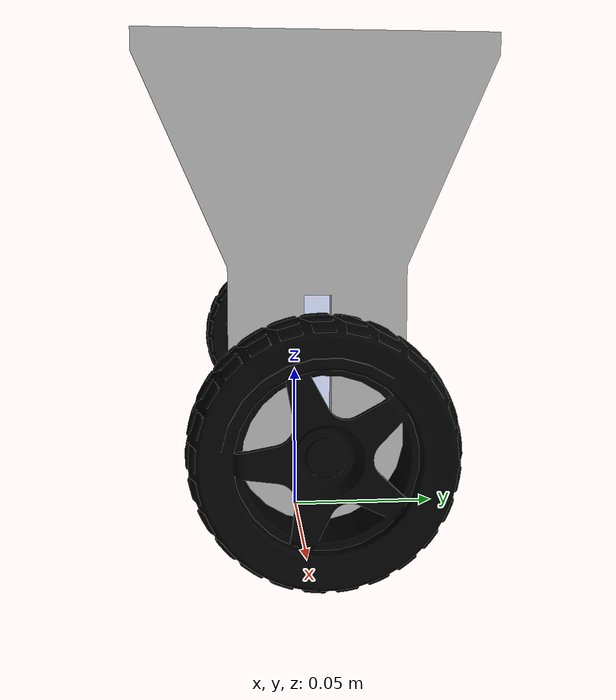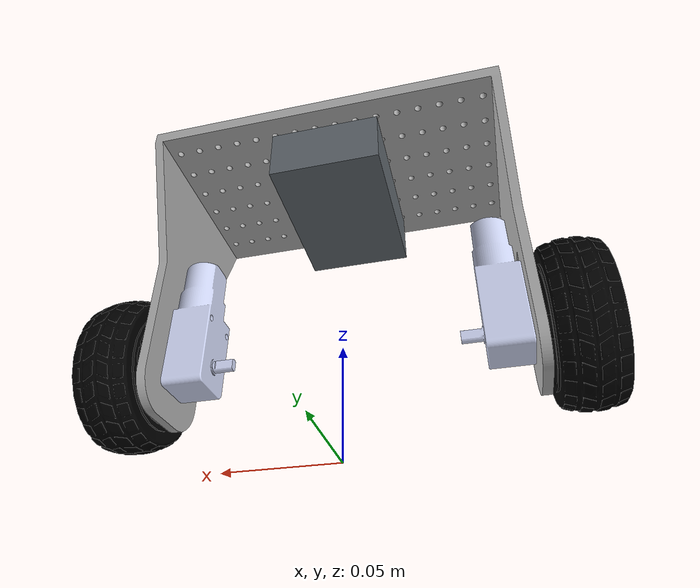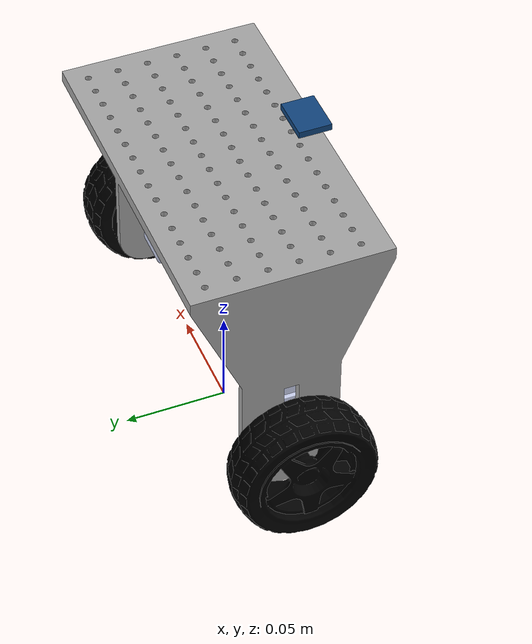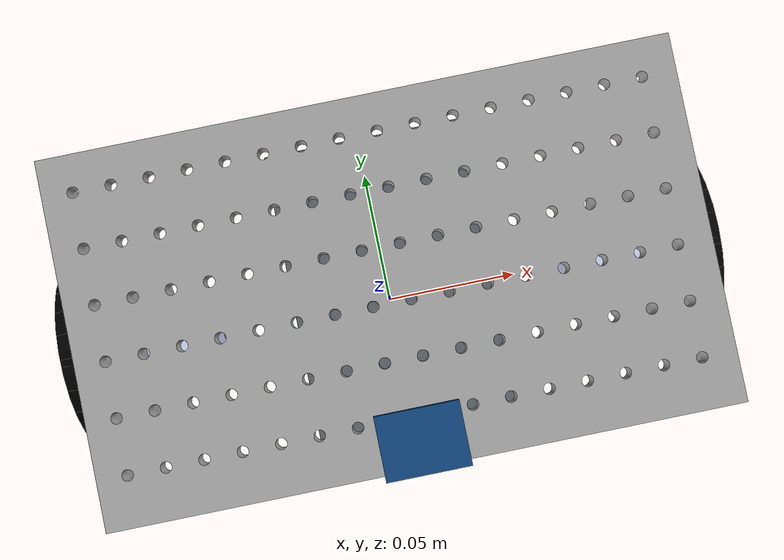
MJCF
<?xml version="1.0" ?>
<!-- Generated using onshape-to-robot -->
<!-- Onshape https://cad.onshape.com/documents/740d5402aae08c0fa4f6d6f2/w/2e2c6d5b3e262629ae121e1f/e/18d36e26c3fc768475e27b5f -->
<mujoco model="cad">
  <compiler angle="radian" meshdir="assets" autolimits="true"/>
  <default>
    <default class="cad">
      <joint frictionloss="0.1" armature="0.00082"/>
      <position kp="50" dampratio="1"/>
      <default class="visual">
        <geom type="mesh" contype="0" conaffinity="0" group="2"/>
      </default>
      <default class="collision">
        <geom group="3"/>
      </default>
    </default>
  </default>
  <!-- Additional sensors.xml -->
  <sensor>
    <framequat name="imu_quat" objtype="site" objname="imu"/>
    <gyro name="imu_gyro" site="imu"/>
    <accelerometer name="imu_accel" site="imu"/>
    <jointpos name="left_wheel_pos" joint="wheel1"/>
    <jointvel name="left_wheel_vel" joint="wheel1"/>
    <jointpos name="right_wheel_pos" joint="wheel2"/>
    <jointvel name="right_wheel_vel" joint="wheel2"/>
  </sensor>
  <worldbody>
    <!-- Link chassis -->
    <body name="chassis" pos="0 0 0.154277" quat="1 0 0 0" childclass="cad">
      <freejoint name="chassis_freejoint"/>
      <inertial pos="3.5961e-05 2.1653e-05 -0.029607" mass="0.642509" fullinertia="0.000619608 0.00138348 0.00114323 -4.887e-09 5.01045e-07 3.7549e-07"/>
      <!-- Part motor_right -->
      <geom type="mesh" class="visual" pos="0.0631796 7.77589e-05 -0.106" quat="0.5 -0.5 0.5 -0.5" mesh="motor_right" material="motor_right_material"/>
      <geom type="mesh" class="collision" pos="0.0631796 7.77589e-05 -0.106" quat="0.5 -0.5 0.5 -0.5" mesh="motor_right" material="motor_right_material" mass="0.0306"/>
      <!-- Part chassis -->
      <geom type="mesh" class="visual" pos="0.0631796 7.77589e-05 -0.106" quat="0.5 -0.5 0.5 -0.5" mesh="chassis" material="chassis_material"/>
      <geom type="mesh" class="collision" pos="0.0631796 7.77589e-05 -0.106" quat="0.5 -0.5 0.5 -0.5" mesh="chassis" material="chassis_material"/>
      <!-- Part imu_2 -->
      <geom type="mesh" class="visual" pos="0.0171343 -0.151121 -0.0968" quat="0.5 -0.5 0.5 -0.5" mesh="imu" material="imu_material"/>
      <geom type="mesh" class="collision" pos="0.0171343 -0.151121 -0.0968" quat="0.5 -0.5 0.5 -0.5" mesh="imu" material="imu_material"/>
      <!-- Part motor_left -->
      <geom type="mesh" class="visual" pos="0.0631796 7.77589e-05 -0.106" quat="0.5 -0.5 0.5 -0.5" mesh="motor_left" material="motor_left_material"/>
      <geom type="mesh" class="collision" pos="0.0631796 7.77589e-05 -0.106" quat="0.5 -0.5 0.5 -0.5" mesh="motor_left" material="motor_left_material" mass="0.0306"/>
      <!-- Part iniu -->
      <geom type="mesh" class="visual" pos="0.0368621 -0.00591677 0.0686" quat="0.5 0.5 0.5 0.5" mesh="iniu" material="iniu_material"/>
      <geom type="mesh" class="collision" pos="0.0368621 -0.00591677 0.0686" quat="0.5 0.5 0.5 0.5" mesh="iniu" material="iniu_material"/>
      <!-- Frame imu -->
      <site group="3" name="imu" pos="-2.04186e-05 -0.0396514 0.0125" quat="0.707107 0 -0 0.707107"/>
      <!-- Link wheel_left -->
      <body name="wheel_left" pos="-0.0874204 7.77589e-05 -0.106" quat="0.105582 -0.69918 -0.105582 0.69918">
        <!-- Joint from chassis to wheel_left -->
        <joint axis="0 0 1" name="wheel1" type="hinge"/>
        <inertial pos="-1.8653e-08 -1.32e-09 0.00912701" mass="0.0596221" fullinertia="1.19513e-05 1.19507e-05 2.00869e-05 1e-12 -0 -0"/>
        <!-- Part wheel_left -->
        <geom type="mesh" class="visual" pos="0 0 0.021" quat="1 -0 -0 0" mesh="wheel_left" material="wheel_left_material"/>
        <geom type="mesh" class="collision" pos="0 0 0.021" quat="1 -0 -0 0" mesh="wheel_left" material="wheel_left_material"/>
      </body>
      <!-- Link wheel_right -->
      <body name="wheel_right" pos="0.0873796 7.77589e-05 -0.106" quat="0.66973 0.226851 0.66973 0.226851">
        <!-- Joint from chassis to wheel_right -->
        <joint axis="0 0 1" name="wheel2" type="hinge"/>
        <inertial pos="-1.8653e-08 -1.32e-09 0.00912701" mass="0.0596221" fullinertia="1.19513e-05 1.19507e-05 2.00869e-05 1e-12 -0 -0"/>
        <!-- Part wheel_right -->
        <geom type="mesh" class="visual" pos="0 0 0.021" quat="1 -0 -0 -0" mesh="wheel_right" material="wheel_right_material"/>
        <geom type="mesh" class="collision" pos="0 0 0.021" quat="1 -0 -0 -0" mesh="wheel_right" material="wheel_right_material"/>
      </body>
    </body>
  </worldbody>
  <asset>
    <mesh file="chassis.stl"/>
    <mesh file="motor_left.stl"/>
    <mesh file="iniu.stl"/>
    <mesh file="motor_right.stl"/>
    <mesh file="wheel_right.stl"/>
    <mesh file="imu.stl"/>
    <mesh file="wheel_left.stl"/>
    <material name="motor_right_material" rgba="0.796078 0.823529 0.937255 1"/>
    <material name="chassis_material" rgba="0.647059 0.647059 0.647059 1"/>
    <material name="imu_material" rgba="0.0627451 0.266667 0.490196 1"/>
    <material name="motor_left_material" rgba="0.796078 0.823529 0.937255 1"/>
    <material name="iniu_material" rgba="0.34902 0.376471 0.4 1"/>
    <material name="wheel_left_material" rgba="0 0 0 1"/>
    <material name="wheel_right_material" rgba="0 0 0 1"/>
  </asset>
  <actuator>
    <motor class="cad" name="wheel1" joint="wheel1" gear="0.1765" ctrllimited="true" ctrlrange="-1 1"/>
    <motor class="cad" name="wheel2" joint="wheel2" gear="0.1765" ctrllimited="true" ctrlrange="-1 1"/>
  </actuator>
  <equality/>
</mujoco>
